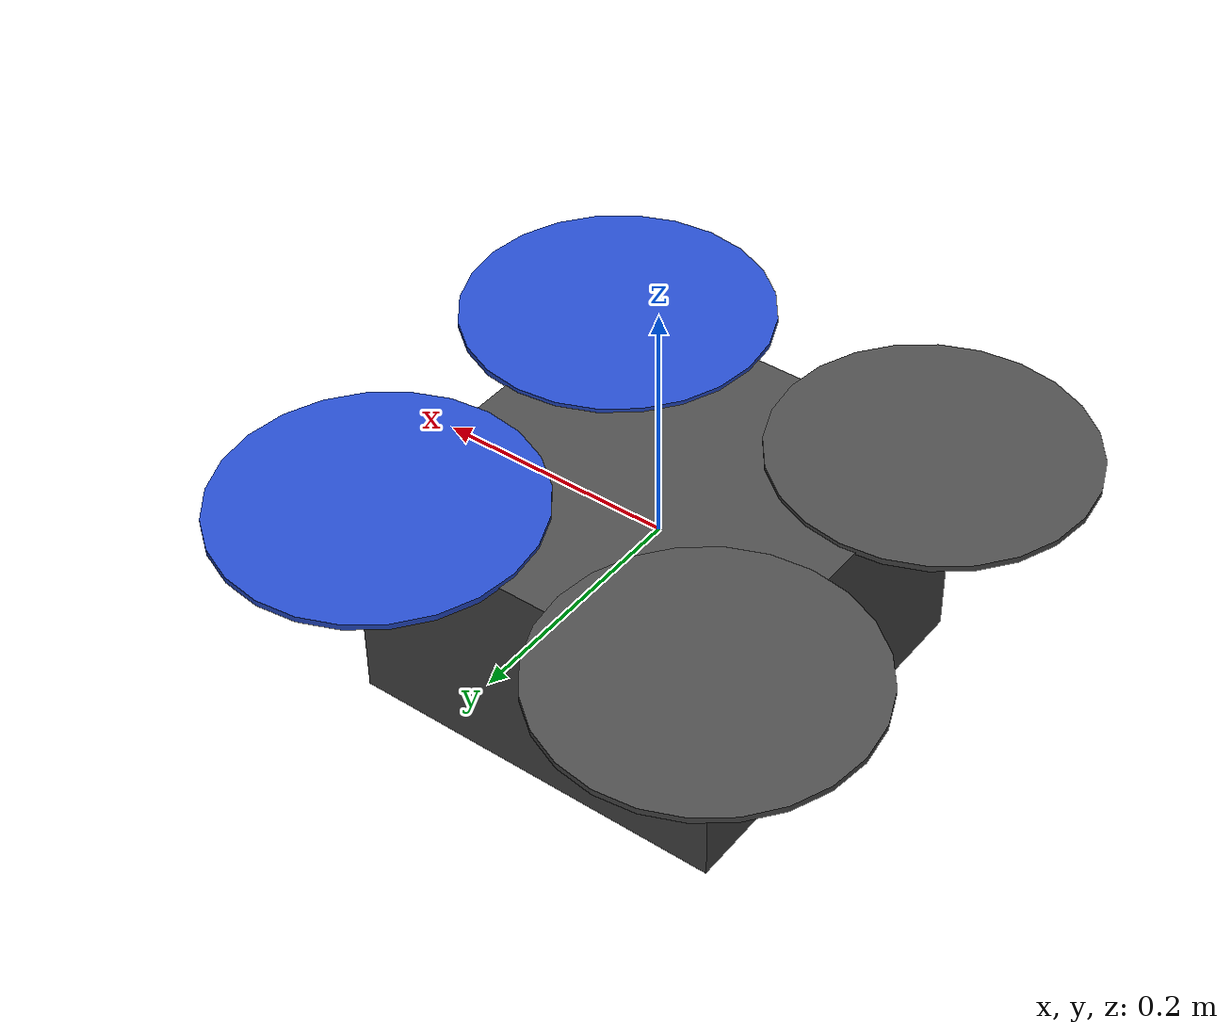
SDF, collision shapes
<sdf version='1.5'>
  <model name='solo'>
    <!-- Solo body -->
    <link name='base_link'>
      <pose>0 0 0 0 0 0</pose>
      <inertial>
        <pose>0 0 0 0 0 0</pose>
        <mass>1.47</mass>
        <inertia>
          <ixx>0.011</ixx>
          <ixy>0</ixy>
          <ixz>0</ixz>
          <iyy>0.015</iyy>
          <iyz>0</iyz>
          <izz>0.021</izz>
        </inertia>
      </inertial>
      <collision name='base_link_inertia_collision'>
        <pose>0 0 -0.04 0 0 0</pose>
        <geometry>
          <box>
            <size>0.32 0.32 0.18</size>
          </box>
        </geometry>
        <surface>
          <contact>
            <ode>
              <min_depth>0.001</min_depth>
              <max_vel>0</max_vel>
            </ode>
          </contact>
          <friction>
            <ode/>
          </friction>
        </surface>
      </collision>
      <visual name='base_link_inertia_visual'>
        <pose>0 0 0 0 0 0</pose>
        <geometry>
          <mesh>
            <scale>1 1 1</scale>
            <uri>model://solo/meshes/solo.stl</uri>
          </mesh>
        </geometry>
        <material>
          <script>
            <name>Gazebo/DarkGrey</name>
            <uri>file://media/materials/scripts/gazebo.material</uri>
          </script>
        </material>
      </visual>
      <gravity>1</gravity>
      <velocity_decay/>
      <self_collide>0</self_collide>
      <sensor type="multicamera" name="stereo_camera">
        <pose frame=''>0 0 -0.05 0 1.5708 0</pose>
        <parent>base_link</parent>
        <update_rate>24.0</update_rate>
        <camera name="left">
          <pose>0 0 0 0 0 0</pose>
          <horizontal_fov>1.5708</horizontal_fov>
          <image>
            <width>752</width>
            <height>480</height>
            <format>R8G8B8</format>
          </image>
          <clip>
            <near>0.02</near>
            <far>300</far>
          </clip>
          <noise>
            <type>gaussian</type>
            <mean>0.0</mean>
            <stddev>0.000</stddev>
          </noise>
        </camera>
        <plugin name="stereo_camera_controller" filename="libgazebo_ros_multicamera.so">
          <alwaysOn>true</alwaysOn>
          <updateRate>0.0</updateRate>
          <cameraName>gi/simulation</cameraName>
          <imageTopicName>image_raw</imageTopicName>
          <cameraInfoTopicName>camera_info</cameraInfoTopicName>
          <frameName>left_camera_optical_frame</frameName>
          <hackBaseline>0.05</hackBaseline>
          <Fx>376.0</Fx>
          <Fy>376.0</Fy>
          <Cx>376.0</Cx>
          <Cy>240.0</Cy>
          <distortionK1>0.0</distortionK1>
          <distortionK2>0.0</distortionK2>
          <distortionK3>0.0</distortionK3>
          <distortionT1>0.0</distortionT1>
          <distortionT2>0.0</distortionT2>
        </plugin>
      </sensor>
    </link>
    <link name='imu_link'>
      <pose>0 0 0 0 0 0</pose>
      <inertial>
        <pose>0 0 0 0 0 0</pose>
        <mass>0.015</mass>
        <inertia>
          <ixx>1e-05</ixx>
          <ixy>0</ixy>
          <ixz>0</ixz>
          <iyy>1e-05</iyy>
          <iyz>0</iyz>
          <izz>1e-05</izz>
        </inertia>
      </inertial>
    </link>
    <joint name='imu_joint' type='revolute'>
      <child>imu_link</child>
      <parent>base_link</parent>
      <axis>
        <xyz>1 0 0</xyz>
        <limit>
          <lower>0</lower>
          <upper>0</upper>
          <effort>0</effort>
          <velocity>0</velocity>
        </limit>
        <dynamics>
          <spring_reference>0</spring_reference>
          <spring_stiffness>0</spring_stiffness>
        </dynamics>
        <use_parent_model_frame>1</use_parent_model_frame>
      </axis>
    </joint>
    <link name='rotor_0'>
      <pose>0.14745 -0.14525 0.051 0 0 0</pose>
      <inertial>
        <pose>0 0 0 0 0 0</pose>
        <mass>0.005</mass>
        <inertia>
          <ixx>9.75e-07</ixx>
          <ixy>0</ixy>
          <ixz>0</ixz>
          <iyy>0.000273104</iyy>
          <iyz>0</iyz>
          <izz>0.000274004</izz>
        </inertia>
      </inertial>
      <collision name='rotor_0_collision'>
        <pose>0 0 0 0 0 0</pose>
        <geometry>
          <cylinder>
            <length>0.005</length>
            <radius>0.128</radius>
          </cylinder>
        </geometry>
        <surface>
          <contact>
            <ode/>
          </contact>
          <friction>
            <ode/>
          </friction>
        </surface>
      </collision>
      <visual name='rotor_0_visual'>
        <pose>-0.14745 -0.14525 -0.051 0 0 0</pose>
        <geometry>
          <mesh>
            <scale>1 1 1</scale>
            <uri>model://solo/meshes/solo_prop_ccw.stl</uri>
          </mesh>
        </geometry>
        <material>
          <script>
            <name>Gazebo/Blue</name>
            <uri>file://media/materials/scripts/gazebo.material</uri>
          </script>
        </material>
      </visual>
      <gravity>1</gravity>
      <velocity_decay/>
      <self_collide>0</self_collide>
    </link>
    <joint name='rotor_0_joint' type='revolute'>
      <child>rotor_0</child>
      <parent>base_link</parent>
      <axis>
        <xyz>0 0 1</xyz>
        <limit>
          <lower>-1e+16</lower>
          <upper>1e+16</upper>
        </limit>
        <dynamics>
          <spring_reference>0</spring_reference>
          <spring_stiffness>0</spring_stiffness>
        </dynamics>
        <use_parent_model_frame>1</use_parent_model_frame>
      </axis>
    </joint>
    <link name='rotor_1'>
      <pose>-0.14745 0.14525 0.051 0 0 0</pose>
      <inertial>
        <pose>0 0 0 0 0 0</pose>
        <mass>0.005</mass>
        <inertia>
          <ixx>9.75e-07</ixx>
          <ixy>0</ixy>
          <ixz>0</ixz>
          <iyy>0.000273104</iyy>
          <iyz>0</iyz>
          <izz>0.000274004</izz>
        </inertia>
      </inertial>
      <collision name='rotor_1_collision'>
        <pose>0 0 0 0 0 0</pose>
        <geometry>
          <cylinder>
            <length>0.005</length>
            <radius>0.128</radius>
          </cylinder>
        </geometry>
        <surface>
          <contact>
            <ode/>
          </contact>
          <friction>
            <ode/>
          </friction>
        </surface>
      </collision>
      <visual name='rotor_1_visual'>
        <pose>-0.14745 -0.14525 -0.051 0 0 0</pose>
        <geometry>
          <mesh>
            <scale>1 1 1</scale>
            <uri>model://solo/meshes/solo_prop_ccw.stl</uri>
          </mesh>
        </geometry>
        <material>
          <script>
            <name>Gazebo/DarkGrey</name>
            <uri>file://media/materials/scripts/gazebo.material</uri>
          </script>
        </material>
      </visual>
      <gravity>1</gravity>
      <velocity_decay/>
      <self_collide>0</self_collide>
    </link>
    <joint name='rotor_1_joint' type='revolute'>
      <child>rotor_1</child>
      <parent>base_link</parent>
      <axis>
        <xyz>0 0 1</xyz>
        <limit>
          <lower>-1e+16</lower>
          <upper>1e+16</upper>
        </limit>
        <dynamics>
          <spring_reference>0</spring_reference>
          <spring_stiffness>0</spring_stiffness>
        </dynamics>
        <use_parent_model_frame>1</use_parent_model_frame>
      </axis>
    </joint>
    <link name='rotor_2'>
      <pose>0.14745 0.14525 0.051 0 0 0</pose>
      <inertial>
        <pose>0 0 0 0 0 0</pose>
        <mass>0.005</mass>
        <inertia>
          <ixx>9.75e-07</ixx>
          <ixy>0</ixy>
          <ixz>0</ixz>
          <iyy>0.000273104</iyy>
          <iyz>0</iyz>
          <izz>0.000274004</izz>
        </inertia>
      </inertial>
      <collision name='rotor_2_collision'>
        <pose>0 0 0 0 0 0</pose>
        <geometry>
          <cylinder>
            <length>0.005</length>
            <radius>0.128</radius>
          </cylinder>
        </geometry>
        <surface>
          <contact>
            <ode/>
          </contact>
          <friction>
            <ode/>
          </friction>
        </surface>
      </collision>
      <visual name='rotor_2_visual'>
        <pose>-0.14745 0.14525 -0.051 0 0 0</pose>
        <geometry>
          <mesh>
            <scale>1 1 1</scale>
            <uri>model://solo/meshes/solo_prop_cw.stl</uri>
          </mesh>
        </geometry>
        <material>
          <script>
            <name>Gazebo/Blue</name>
            <uri>file://media/materials/scripts/gazebo.material</uri>
          </script>
        </material>
      </visual>
      <gravity>1</gravity>
      <velocity_decay/>
      <self_collide>0</self_collide>
    </link>
    <joint name='rotor_2_joint' type='revolute'>
      <child>rotor_2</child>
      <parent>base_link</parent>
      <axis>
        <xyz>0 0 1</xyz>
        <limit>
          <lower>-1e+16</lower>
          <upper>1e+16</upper>
        </limit>
        <dynamics>
          <spring_reference>0</spring_reference>
          <spring_stiffness>0</spring_stiffness>
        </dynamics>
        <use_parent_model_frame>1</use_parent_model_frame>
      </axis>
    </joint>
    <link name='rotor_3'>
      <pose>-0.14745 -0.14525 0.051 0 0 0</pose>
      <inertial>
        <pose>0 0 0 0 0 0</pose>
        <mass>0.005</mass>
        <inertia>
          <ixx>9.75e-07</ixx>
          <ixy>0</ixy>
          <ixz>0</ixz>
          <iyy>0.000273104</iyy>
          <iyz>0</iyz>
          <izz>0.000274004</izz>
        </inertia>
      </inertial>
      <collision name='rotor_3_collision'>
        <pose>0 0 0 0 0 0</pose>
        <geometry>
          <cylinder>
            <length>0.005</length>
            <radius>0.128</radius>
          </cylinder>
        </geometry>
        <surface>
          <contact>
            <ode/>
          </contact>
          <friction>
            <ode/>
          </friction>
        </surface>
      </collision>
      <visual name='rotor_3_visual'>
        <pose>-0.14745 0.14525 -0.051 0 0 0</pose>
        <geometry>
          <mesh>
            <scale>1 1 1</scale>
            <uri>model://solo/meshes/solo_prop_cw.stl</uri>
          </mesh>
        </geometry>
        <material>
          <script>
            <name>Gazebo/DarkGrey</name>
            <uri>file://media/materials/scripts/gazebo.material</uri>
          </script>
        </material>
      </visual>
      <gravity>1</gravity>
      <velocity_decay/>
      <self_collide>0</self_collide>
    </link>
    <joint name='rotor_3_joint' type='revolute'>
      <child>rotor_3</child>
      <parent>base_link</parent>
      <axis>
        <xyz>0 0 1</xyz>
        <limit>
          <lower>-1e+16</lower>
          <upper>1e+16</upper>
        </limit>
        <dynamics>
          <spring_reference>0</spring_reference>
          <spring_stiffness>0</spring_stiffness>
        </dynamics>
        <use_parent_model_frame>1</use_parent_model_frame>
      </axis>
    </joint>
    <plugin name='rosbag' filename='libgazebo_multirotor_base_plugin.so'>
      <robotNamespace></robotNamespace>
      <linkName>base_link</linkName>
      <rotorVelocitySlowdownSim>10</rotorVelocitySlowdownSim>
    </plugin>
    <plugin name='front_right_motor_model' filename='libgazebo_motor_model.so'>
      <robotNamespace></robotNamespace>
      <jointName>rotor_0_joint</jointName>
      <linkName>rotor_0</linkName>
      <turningDirection>ccw</turningDirection>
      <timeConstantUp>0.0125</timeConstantUp>
      <timeConstantDown>0.025</timeConstantDown>
      <maxRotVelocity>1500</maxRotVelocity>
      <motorConstant>8.54858e-06</motorConstant>
      <momentConstant>0.06</momentConstant>
      <commandSubTopic>/gazebo/command/motor_speed</commandSubTopic>
      <motorNumber>0</motorNumber>
      <rotorDragCoefficient>0.000806428</rotorDragCoefficient>
      <rollingMomentCoefficient>1e-06</rollingMomentCoefficient>
      <motorSpeedPubTopic>/motor_speed/0</motorSpeedPubTopic>
      <rotorVelocitySlowdownSim>10</rotorVelocitySlowdownSim>
    </plugin>
    <plugin name='back_left_motor_model' filename='libgazebo_motor_model.so'>
      <robotNamespace></robotNamespace>
      <jointName>rotor_1_joint</jointName>
      <linkName>rotor_1</linkName>
      <turningDirection>ccw</turningDirection>
      <timeConstantUp>0.0125</timeConstantUp>
      <timeConstantDown>0.025</timeConstantDown>
      <maxRotVelocity>1500</maxRotVelocity>
      <motorConstant>8.54858e-06</motorConstant>
      <momentConstant>0.06</momentConstant>
      <commandSubTopic>/gazebo/command/motor_speed</commandSubTopic>
      <motorNumber>1</motorNumber>
      <rotorDragCoefficient>0.000806428</rotorDragCoefficient>
      <rollingMomentCoefficient>1e-06</rollingMomentCoefficient>
      <motorSpeedPubTopic>/motor_speed/1</motorSpeedPubTopic>
      <rotorVelocitySlowdownSim>10</rotorVelocitySlowdownSim>
    </plugin>
    <plugin name='front_left_motor_model' filename='libgazebo_motor_model.so'>
      <robotNamespace></robotNamespace>
      <jointName>rotor_2_joint</jointName>
      <linkName>rotor_2</linkName>
      <turningDirection>cw</turningDirection>
      <timeConstantUp>0.0125</timeConstantUp>
      <timeConstantDown>0.025</timeConstantDown>
      <maxRotVelocity>1500</maxRotVelocity>
      <motorConstant>8.54858e-06</motorConstant>
      <momentConstant>0.06</momentConstant>
      <commandSubTopic>/gazebo/command/motor_speed</commandSubTopic>
      <motorNumber>2</motorNumber>
      <rotorDragCoefficient>0.000806428</rotorDragCoefficient>
      <rollingMomentCoefficient>1e-06</rollingMomentCoefficient>
      <motorSpeedPubTopic>/motor_speed/2</motorSpeedPubTopic>
      <rotorVelocitySlowdownSim>10</rotorVelocitySlowdownSim>
    </plugin>
    <plugin name='back_right_motor_model' filename='libgazebo_motor_model.so'>
      <robotNamespace></robotNamespace>
      <jointName>rotor_3_joint</jointName>
      <linkName>rotor_3</linkName>
      <turningDirection>cw</turningDirection>
      <timeConstantUp>0.0125</timeConstantUp>
      <timeConstantDown>0.025</timeConstantDown>
      <maxRotVelocity>1500</maxRotVelocity>
      <motorConstant>8.54858e-06</motorConstant>
      <momentConstant>0.06</momentConstant>
      <commandSubTopic>/gazebo/command/motor_speed</commandSubTopic>
      <motorNumber>3</motorNumber>
      <rotorDragCoefficient>0.000806428</rotorDragCoefficient>
      <rollingMomentCoefficient>1e-06</rollingMomentCoefficient>
      <motorSpeedPubTopic>/motor_speed/3</motorSpeedPubTopic>
      <rotorVelocitySlowdownSim>10</rotorVelocitySlowdownSim>
    </plugin>
    <plugin name="gps_plugin" filename="libgazebo_gps_plugin.so">
      <robotNamespace></robotNamespace>
      <gpsNoise>true</gpsNoise>
    </plugin>
    <plugin name='mavlink_interface' filename='libgazebo_mavlink_interface.so'>
      <robotNamespace/>
      <imuSubTopic>/imu</imuSubTopic>
      <gpsSubTopic>/gps</gpsSubTopic>
      <mavlink_addr>INADDR_ANY</mavlink_addr>
      <mavlink_udp_port>14560</mavlink_udp_port>
      <serialEnabled>false</serialEnabled>
      <serialDevice>/dev/ttyACM0</serialDevice>
      <baudRate>921600</baudRate>
      <qgc_addr>INADDR_ANY</qgc_addr>
      <qgc_udp_port>14550</qgc_udp_port>
      <hil_mode>false</hil_mode>
      <hil_state_level>false</hil_state_level>
      <enable_lockstep>true</enable_lockstep>
      <motorSpeedCommandPubTopic>/gazebo/command/motor_speed</motorSpeedCommandPubTopic>
      <control_channels>
        <channel name='rotor1'>
          <input_index>0</input_index>
          <input_offset>0</input_offset>
          <input_scaling>1200</input_scaling>
          <zero_position_disarmed>0</zero_position_disarmed>
          <zero_position_armed>100</zero_position_armed>
          <joint_control_type>velocity</joint_control_type>
        </channel>
        <channel name='rotor2'>
          <input_index>1</input_index>
          <input_offset>0</input_offset>
          <input_scaling>1200</input_scaling>
          <zero_position_disarmed>0</zero_position_disarmed>
          <zero_position_armed>100</zero_position_armed>
          <joint_control_type>velocity</joint_control_type>
        </channel>
        <channel name='rotor3'>
          <input_index>2</input_index>
          <input_offset>0</input_offset>
          <input_scaling>1200</input_scaling>
          <zero_position_disarmed>0</zero_position_disarmed>
          <zero_position_armed>100</zero_position_armed>
          <joint_control_type>velocity</joint_control_type>
        </channel>
        <channel name='rotor4'>
          <input_index>3</input_index>
          <input_offset>0</input_offset>
          <input_scaling>1200</input_scaling>
          <zero_position_disarmed>0</zero_position_disarmed>
          <zero_position_armed>100</zero_position_armed>
          <joint_control_type>velocity</joint_control_type>
        </channel>
      </control_channels>
    </plugin>
    <static>0</static>
    <plugin name='gazebo_imu_plugin' filename='libgazebo_imu_plugin.so'>
      <robotNamespace></robotNamespace>
      <linkName>imu_link</linkName>
      <imuTopic>/imu</imuTopic>
      <gyroscopeNoiseDensity>0.0003394</gyroscopeNoiseDensity>
      <gyroscopeRandomWalk>3.8785e-05</gyroscopeRandomWalk>
      <gyroscopeBiasCorrelationTime>1000.0</gyroscopeBiasCorrelationTime>
      <gyroscopeTurnOnBiasSigma>0.0087</gyroscopeTurnOnBiasSigma>
      <accelerometerNoiseDensity>0.004</accelerometerNoiseDensity>
      <accelerometerRandomWalk>0.006</accelerometerRandomWalk>
      <accelerometerBiasCorrelationTime>300.0</accelerometerBiasCorrelationTime>
      <accelerometerTurnOnBiasSigma>0.196</accelerometerTurnOnBiasSigma>
    </plugin>
    <!-- Adding camera -->
  </model>
</sdf>
